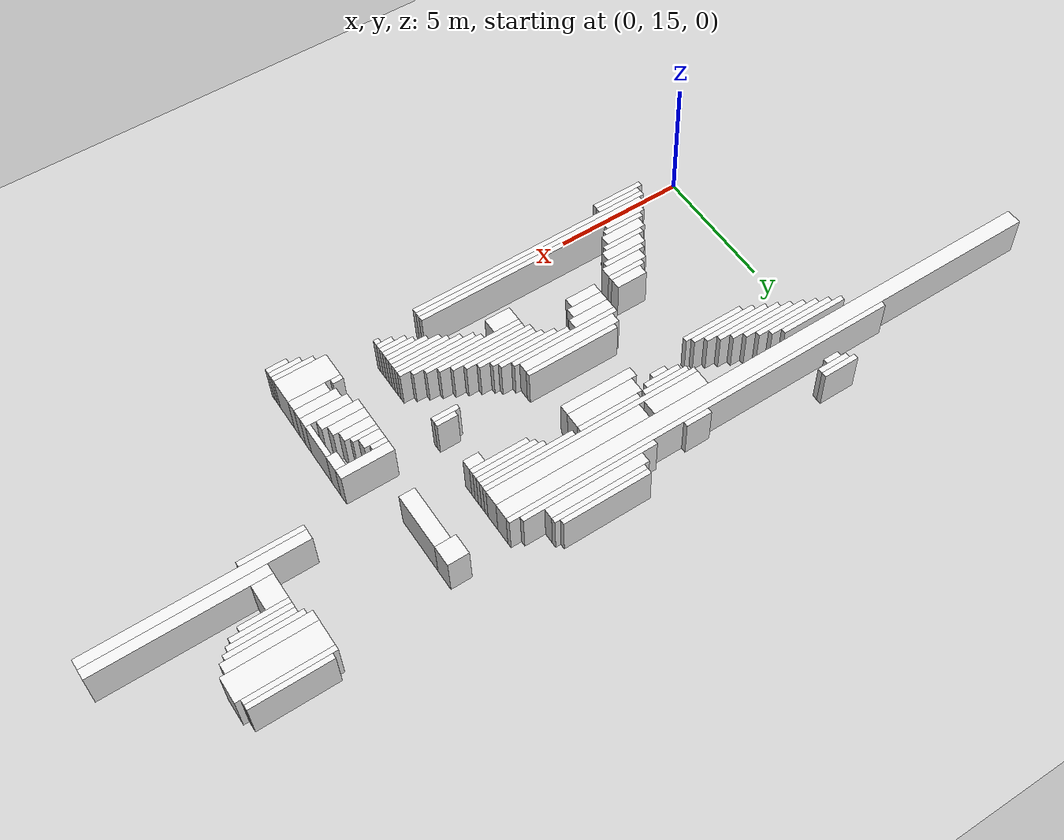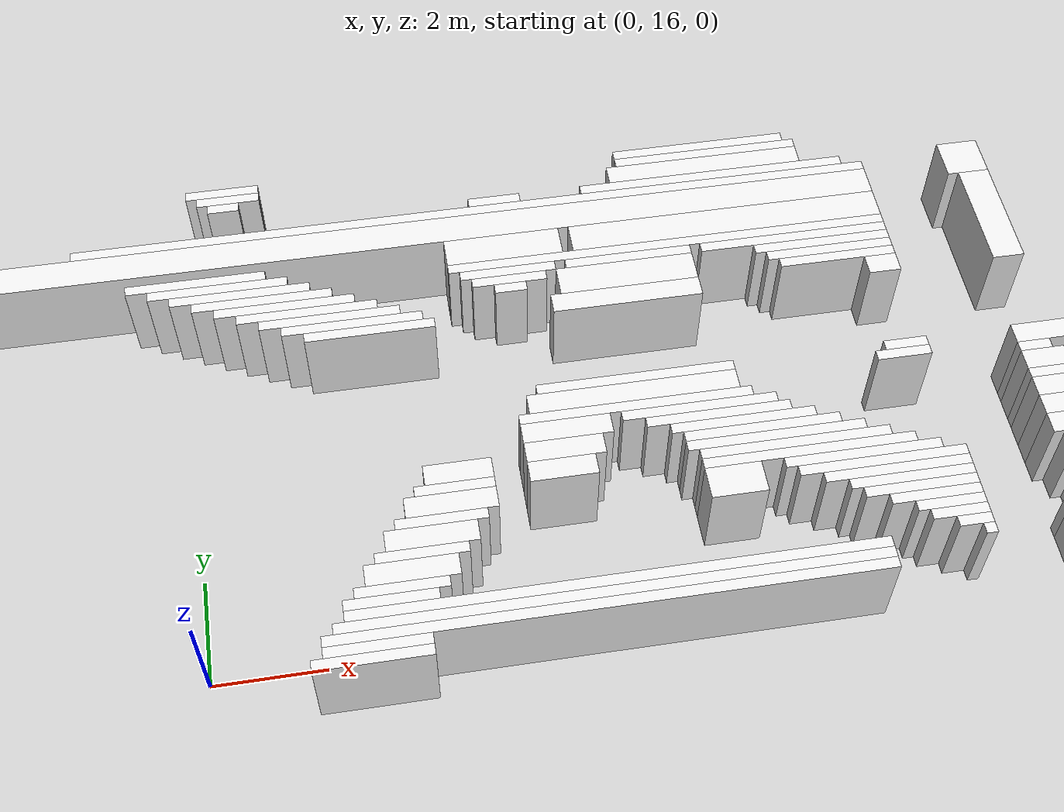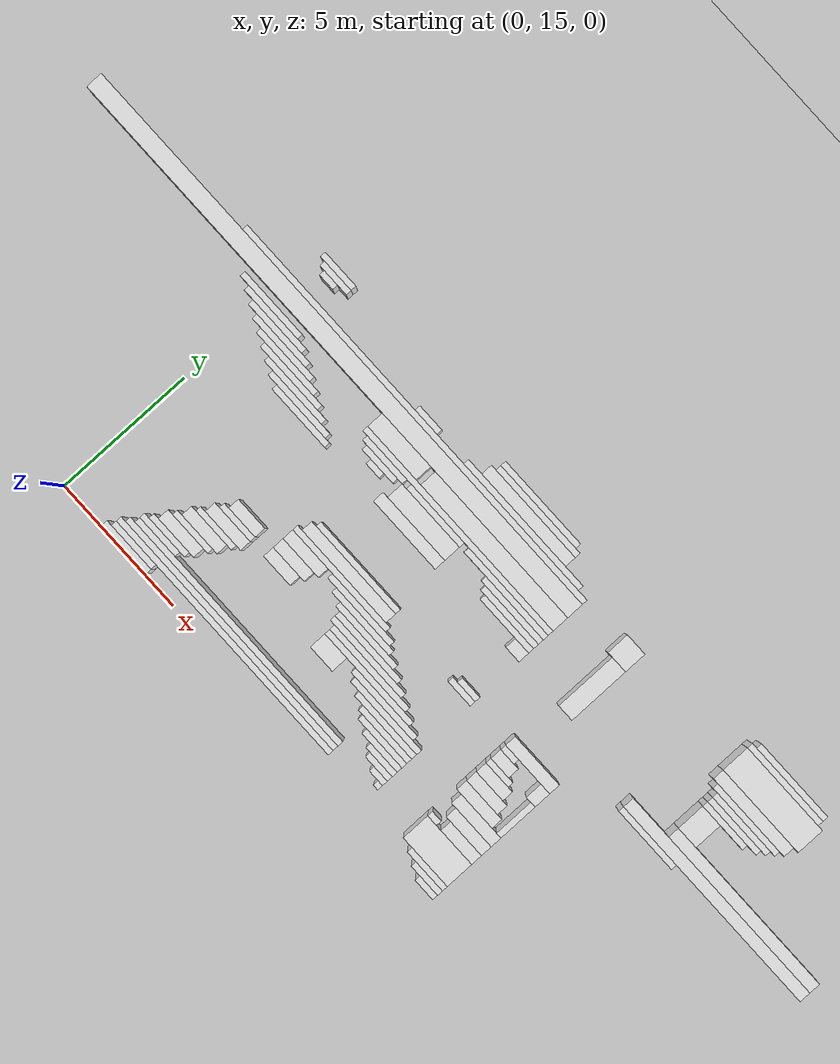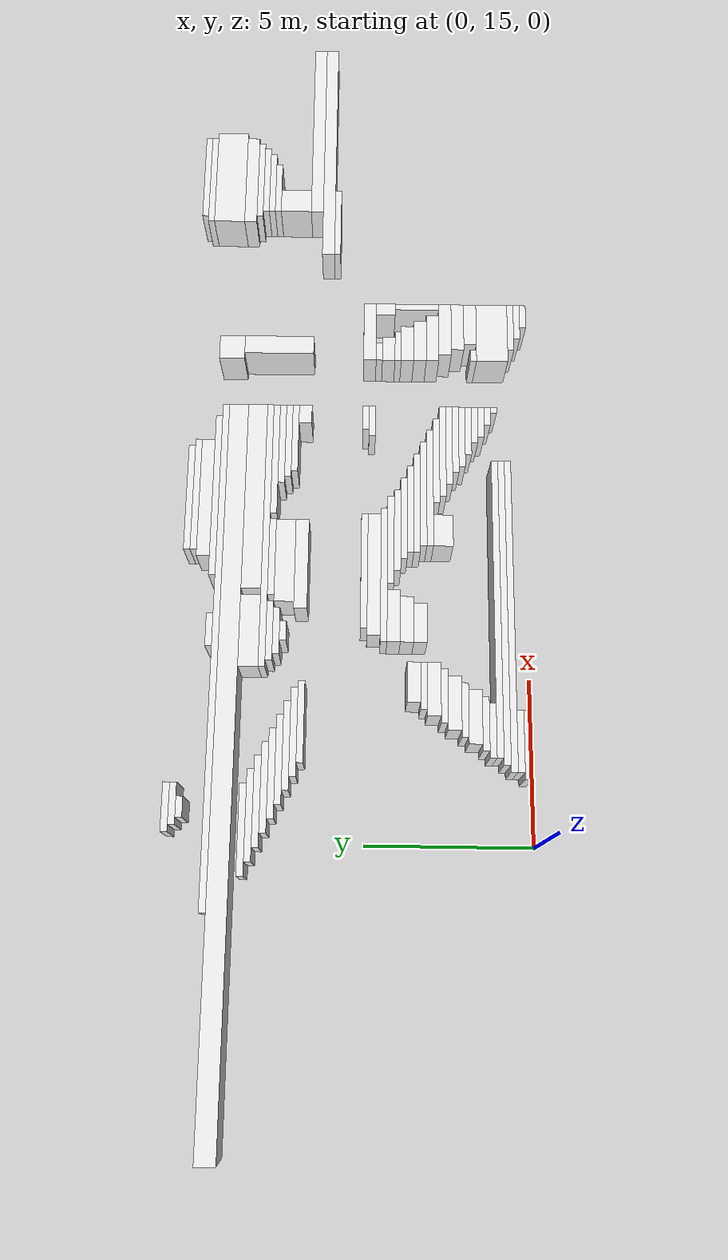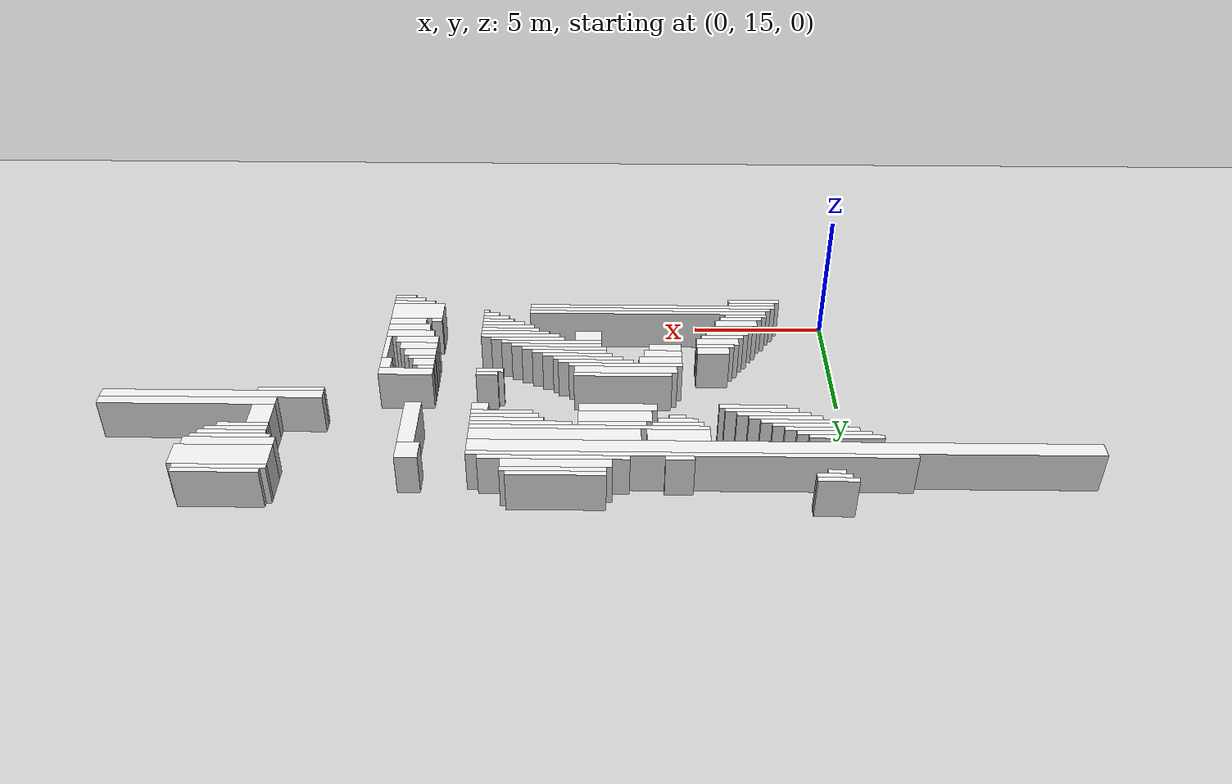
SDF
<sdf version="1.7">
 <world name="default">
  <model name="ground_plane">
   <static>1</static>
   <link name="link">
    <collision name="collision">
     <geometry><plane><normal>0 0 1</normal><size>120 120</size></plane></geometry>
    </collision>
    <visual name="visual">
     <geometry><plane><normal>0 0 1</normal><size>120 120</size></plane></geometry>
     <material>
      <script><uri>file://media/materials/scripts/gazebo.material</uri><name>Gazebo/Grey</name></script>
     </material>
    </visual>
   </link>
  </model>
  <model name="random_complex_01_model">
   <static>1</static>
   <link name="obs_806">
    <pose>0.9000 25.7000 0.8000 0 0 0</pose>
    <collision name="obs_806_col"><geometry><box><size>1.4000 0.2000 1.6000</size></box></geometry></collision>
    <visual name="obs_806_vis">
     <geometry><box><size>1.4000 0.2000 1.6000</size></box></geometry>
     <material>
      <script><uri>file://media/materials/scripts/gazebo.material</uri><name>Gazebo/White</name></script>
     </material>
    </visual>
   </link>
   <link name="obs_811">
    <pose>1.0000 25.5000 0.8000 0 0 0</pose>
    <collision name="obs_811_col"><geometry><box><size>1.2000 0.2000 1.6000</size></box></geometry></collision>
    <visual name="obs_811_vis">
     <geometry><box><size>1.2000 0.2000 1.6000</size></box></geometry>
     <material>
      <script><uri>file://media/materials/scripts/gazebo.material</uri><name>Gazebo/White</name></script>
     </material>
    </visual>
   </link>
   <link name="obs_812">
    <pose>10.3000 25.5000 0.8000 0 0 0</pose>
    <collision name="obs_812_col"><geometry><box><size>3.4000 0.2000 1.6000</size></box></geometry></collision>
    <visual name="obs_812_vis">
     <geometry><box><size>3.4000 0.2000 1.6000</size></box></geometry>
     <material>
      <script><uri>file://media/materials/scripts/gazebo.material</uri><name>Gazebo/White</name></script>
     </material>
    </visual>
   </link>
   <link name="obs_813">
    <pose>21.7000 25.5000 0.8000 0 0 0</pose>
    <collision name="obs_813_col"><geometry><box><size>3.0000 0.2000 1.6000</size></box></geometry></collision>
    <visual name="obs_813_vis">
     <geometry><box><size>3.0000 0.2000 1.6000</size></box></geometry>
     <material>
      <script><uri>file://media/materials/scripts/gazebo.material</uri><name>Gazebo/White</name></script>
     </material>
    </visual>
   </link>
   <link name="obs_816">
    <pose>0.9000 25.3000 0.8000 0 0 0</pose>
    <collision name="obs_816_col"><geometry><box><size>0.6000 0.2000 1.6000</size></box></geometry></collision>
    <visual name="obs_816_vis">
     <geometry><box><size>0.6000 0.2000 1.6000</size></box></geometry>
     <material>
      <script><uri>file://media/materials/scripts/gazebo.material</uri><name>Gazebo/White</name></script>
     </material>
    </visual>
   </link>
   <link name="obs_817">
    <pose>10.4000 25.3000 0.8000 0 0 0</pose>
    <collision name="obs_817_col"><geometry><box><size>3.6000 0.2000 1.6000</size></box></geometry></collision>
    <visual name="obs_817_vis">
     <geometry><box><size>3.6000 0.2000 1.6000</size></box></geometry>
     <material>
      <script><uri>file://media/materials/scripts/gazebo.material</uri><name>Gazebo/White</name></script>
     </material>
    </visual>
   </link>
   <link name="obs_818">
    <pose>21.6000 25.3000 0.8000 0 0 0</pose>
    <collision name="obs_818_col"><geometry><box><size>3.2000 0.2000 1.6000</size></box></geometry></collision>
    <visual name="obs_818_vis">
     <geometry><box><size>3.2000 0.2000 1.6000</size></box></geometry>
     <material>
      <script><uri>file://media/materials/scripts/gazebo.material</uri><name>Gazebo/White</name></script>
     </material>
    </visual>
   </link>
   <link name="obs_823">
    <pose>10.3000 25.0000 0.8000 0 0 0</pose>
    <collision name="obs_823_col"><geometry><box><size>3.8000 0.4000 1.6000</size></box></geometry></collision>
    <visual name="obs_823_vis">
     <geometry><box><size>3.8000 0.4000 1.6000</size></box></geometry>
     <material>
      <script><uri>file://media/materials/scripts/gazebo.material</uri><name>Gazebo/White</name></script>
     </material>
    </visual>
   </link>
   <link name="obs_832">
    <pose>6.1000 24.7000 0.8000 0 0 0</pose>
    <collision name="obs_832_col"><geometry><box><size>1.0000 0.2000 1.6000</size></box></geometry></collision>
    <visual name="obs_832_vis">
     <geometry><box><size>1.0000 0.2000 1.6000</size></box></geometry>
     <material>
      <script><uri>file://media/materials/scripts/gazebo.material</uri><name>Gazebo/White</name></script>
     </material>
    </visual>
   </link>
   <link name="obs_833">
    <pose>10.4000 24.7000 0.8000 0 0 0</pose>
    <collision name="obs_833_col"><geometry><box><size>5.2000 0.2000 1.6000</size></box></geometry></collision>
    <visual name="obs_833_vis">
     <geometry><box><size>5.2000 0.2000 1.6000</size></box></geometry>
     <material>
      <script><uri>file://media/materials/scripts/gazebo.material</uri><name>Gazebo/White</name></script>
     </material>
    </visual>
   </link>
   <link name="obs_839">
    <pose>5.7000 24.5000 0.8000 0 0 0</pose>
    <collision name="obs_839_col"><geometry><box><size>15.4000 0.2000 1.6000</size></box></geometry></collision>
    <visual name="obs_839_vis">
     <geometry><box><size>15.4000 0.2000 1.6000</size></box></geometry>
     <material>
      <script><uri>file://media/materials/scripts/gazebo.material</uri><name>Gazebo/White</name></script>
     </material>
    </visual>
   </link>
   <link name="obs_841">
    <pose>21.7000 24.7000 0.8000 0 0 0</pose>
    <collision name="obs_841_col"><geometry><box><size>3.4000 1.0000 1.6000</size></box></geometry></collision>
    <visual name="obs_841_vis">
     <geometry><box><size>3.4000 1.0000 1.6000</size></box></geometry>
     <material>
      <script><uri>file://media/materials/scripts/gazebo.material</uri><name>Gazebo/White</name></script>
     </material>
    </visual>
   </link>
   <link name="obs_849">
    <pose>15.4000 24.4000 0.8000 0 0 0</pose>
    <collision name="obs_849_col"><geometry><box><size>0.8000 0.8000 1.6000</size></box></geometry></collision>
    <visual name="obs_849_vis">
     <geometry><box><size>0.8000 0.8000 1.6000</size></box></geometry>
     <material>
      <script><uri>file://media/materials/scripts/gazebo.material</uri><name>Gazebo/White</name></script>
     </material>
    </visual>
   </link>
   <link name="obs_856">
    <pose>2.5000 24.1000 0.8000 0 0 0</pose>
    <collision name="obs_856_col"><geometry><box><size>21.8000 0.6000 1.6000</size></box></geometry></collision>
    <visual name="obs_856_vis">
     <geometry><box><size>21.8000 0.6000 1.6000</size></box></geometry>
     <material>
      <script><uri>file://media/materials/scripts/gazebo.material</uri><name>Gazebo/White</name></script>
     </material>
    </visual>
   </link>
   <link name="obs_857">
    <pose>21.6000 24.0000 0.8000 0 0 0</pose>
    <collision name="obs_857_col"><geometry><box><size>3.2000 0.4000 1.6000</size></box></geometry></collision>
    <visual name="obs_857_vis">
     <geometry><box><size>3.2000 0.4000 1.6000</size></box></geometry>
     <material>
      <script><uri>file://media/materials/scripts/gazebo.material</uri><name>Gazebo/White</name></script>
     </material>
    </visual>
   </link>
   <link name="obs_867">
    <pose>21.6000 23.7000 0.8000 0 0 0</pose>
    <collision name="obs_867_col"><geometry><box><size>2.8000 0.2000 1.6000</size></box></geometry></collision>
    <visual name="obs_867_vis">
     <geometry><box><size>2.8000 0.2000 1.6000</size></box></geometry>
     <material>
      <script><uri>file://media/materials/scripts/gazebo.material</uri><name>Gazebo/White</name></script>
     </material>
    </visual>
   </link>
   <link name="obs_873">
    <pose>0.3000 23.5000 0.8000 0 0 0</pose>
    <collision name="obs_873_col"><geometry><box><size>2.6000 0.2000 1.6000</size></box></geometry></collision>
    <visual name="obs_873_vis">
     <geometry><box><size>2.6000 0.2000 1.6000</size></box></geometry>
     <material>
      <script><uri>file://media/materials/scripts/gazebo.material</uri><name>Gazebo/White</name></script>
     </material>
    </visual>
   </link>
   <link name="obs_874">
    <pose>21.6000 23.5000 0.8000 0 0 0</pose>
    <collision name="obs_874_col"><geometry><box><size>2.4000 0.2000 1.6000</size></box></geometry></collision>
    <visual name="obs_874_vis">
     <geometry><box><size>2.4000 0.2000 1.6000</size></box></geometry>
     <material>
      <script><uri>file://media/materials/scripts/gazebo.material</uri><name>Gazebo/White</name></script>
     </material>
    </visual>
   </link>
   <link name="obs_875">
    <pose>6.1000 23.5000 0.8000 0 0 0</pose>
    <collision name="obs_875_col"><geometry><box><size>2.2000 0.6000 1.6000</size></box></geometry></collision>
    <visual name="obs_875_vis">
     <geometry><box><size>2.2000 0.6000 1.6000</size></box></geometry>
     <material>
      <script><uri>file://media/materials/scripts/gazebo.material</uri><name>Gazebo/White</name></script>
     </material>
    </visual>
   </link>
   <link name="obs_876">
    <pose>10.4000 23.5000 0.8000 0 0 0</pose>
    <collision name="obs_876_col"><geometry><box><size>6.0000 0.6000 1.6000</size></box></geometry></collision>
    <visual name="obs_876_vis">
     <geometry><box><size>6.0000 0.6000 1.6000</size></box></geometry>
     <material>
      <script><uri>file://media/materials/scripts/gazebo.material</uri><name>Gazebo/White</name></script>
     </material>
    </visual>
   </link>
   <link name="obs_883">
    <pose>0.7000 23.3000 0.8000 0 0 0</pose>
    <collision name="obs_883_col"><geometry><box><size>2.6000 0.2000 1.6000</size></box></geometry></collision>
    <visual name="obs_883_vis">
     <geometry><box><size>2.6000 0.2000 1.6000</size></box></geometry>
     <material>
      <script><uri>file://media/materials/scripts/gazebo.material</uri><name>Gazebo/White</name></script>
     </material>
    </visual>
   </link>
   <link name="obs_884">
    <pose>21.5000 23.3000 0.8000 0 0 0</pose>
    <collision name="obs_884_col"><geometry><box><size>2.2000 0.2000 1.6000</size></box></geometry></collision>
    <visual name="obs_884_vis">
     <geometry><box><size>2.2000 0.2000 1.6000</size></box></geometry>
     <material>
      <script><uri>file://media/materials/scripts/gazebo.material</uri><name>Gazebo/White</name></script>
     </material>
    </visual>
   </link>
   <link name="obs_893">
    <pose>1.1000 23.1000 0.8000 0 0 0</pose>
    <collision name="obs_893_col"><geometry><box><size>2.6000 0.2000 1.6000</size></box></geometry></collision>
    <visual name="obs_893_vis">
     <geometry><box><size>2.6000 0.2000 1.6000</size></box></geometry>
     <material>
      <script><uri>file://media/materials/scripts/gazebo.material</uri><name>Gazebo/White</name></script>
     </material>
    </visual>
   </link>
   <link name="obs_894">
    <pose>9.2000 23.1000 0.8000 0 0 0</pose>
    <collision name="obs_894_col"><geometry><box><size>8.4000 0.2000 1.6000</size></box></geometry></collision>
    <visual name="obs_894_vis">
     <geometry><box><size>8.4000 0.2000 1.6000</size></box></geometry>
     <material>
      <script><uri>file://media/materials/scripts/gazebo.material</uri><name>Gazebo/White</name></script>
     </material>
    </visual>
   </link>
   <link name="obs_895">
    <pose>21.3000 23.1000 0.8000 0 0 0</pose>
    <collision name="obs_895_col"><geometry><box><size>1.8000 0.2000 1.6000</size></box></geometry></collision>
    <visual name="obs_895_vis">
     <geometry><box><size>1.8000 0.2000 1.6000</size></box></geometry>
     <material>
      <script><uri>file://media/materials/scripts/gazebo.material</uri><name>Gazebo/White</name></script>
     </material>
    </visual>
   </link>
   <link name="obs_902">
    <pose>1.5000 22.9000 0.8000 0 0 0</pose>
    <collision name="obs_902_col"><geometry><box><size>2.6000 0.2000 1.6000</size></box></geometry></collision>
    <visual name="obs_902_vis">
     <geometry><box><size>2.6000 0.2000 1.6000</size></box></geometry>
     <material>
      <script><uri>file://media/materials/scripts/gazebo.material</uri><name>Gazebo/White</name></script>
     </material>
    </visual>
   </link>
   <link name="obs_903">
    <pose>6.1000 22.9000 0.8000 0 0 0</pose>
    <collision name="obs_903_col"><geometry><box><size>1.8000 0.2000 1.6000</size></box></geometry></collision>
    <visual name="obs_903_vis">
     <geometry><box><size>1.8000 0.2000 1.6000</size></box></geometry>
     <material>
      <script><uri>file://media/materials/scripts/gazebo.material</uri><name>Gazebo/White</name></script>
     </material>
    </visual>
   </link>
   <link name="obs_904">
    <pose>8.4000 22.9000 0.8000 0 0 0</pose>
    <collision name="obs_904_col"><geometry><box><size>2.4000 0.2000 1.6000</size></box></geometry></collision>
    <visual name="obs_904_vis">
     <geometry><box><size>2.4000 0.2000 1.6000</size></box></geometry>
     <material>
      <script><uri>file://media/materials/scripts/gazebo.material</uri><name>Gazebo/White</name></script>
     </material>
    </visual>
   </link>
   <link name="obs_905">
    <pose>11.6000 22.9000 0.8000 0 0 0</pose>
    <collision name="obs_905_col"><geometry><box><size>3.6000 0.2000 1.6000</size></box></geometry></collision>
    <visual name="obs_905_vis">
     <geometry><box><size>3.6000 0.2000 1.6000</size></box></geometry>
     <material>
      <script><uri>file://media/materials/scripts/gazebo.material</uri><name>Gazebo/White</name></script>
     </material>
    </visual>
   </link>
   <link name="obs_912">
    <pose>1.9000 22.7000 0.8000 0 0 0</pose>
    <collision name="obs_912_col"><geometry><box><size>2.6000 0.2000 1.6000</size></box></geometry></collision>
    <visual name="obs_912_vis">
     <geometry><box><size>2.6000 0.2000 1.6000</size></box></geometry>
     <material>
      <script><uri>file://media/materials/scripts/gazebo.material</uri><name>Gazebo/White</name></script>
     </material>
    </visual>
   </link>
   <link name="obs_913">
    <pose>6.1000 22.7000 0.8000 0 0 0</pose>
    <collision name="obs_913_col"><geometry><box><size>1.4000 0.2000 1.6000</size></box></geometry></collision>
    <visual name="obs_913_vis">
     <geometry><box><size>1.4000 0.2000 1.6000</size></box></geometry>
     <material>
      <script><uri>file://media/materials/scripts/gazebo.material</uri><name>Gazebo/White</name></script>
     </material>
    </visual>
   </link>
   <link name="obs_914">
    <pose>12.1000 22.7000 0.8000 0 0 0</pose>
    <collision name="obs_914_col"><geometry><box><size>2.6000 0.2000 1.6000</size></box></geometry></collision>
    <visual name="obs_914_vis">
     <geometry><box><size>2.6000 0.2000 1.6000</size></box></geometry>
     <material>
      <script><uri>file://media/materials/scripts/gazebo.material</uri><name>Gazebo/White</name></script>
     </material>
    </visual>
   </link>
   <link name="obs_922">
    <pose>2.3000 22.5000 0.8000 0 0 0</pose>
    <collision name="obs_922_col"><geometry><box><size>2.6000 0.2000 1.6000</size></box></geometry></collision>
    <visual name="obs_922_vis">
     <geometry><box><size>2.6000 0.2000 1.6000</size></box></geometry>
     <material>
      <script><uri>file://media/materials/scripts/gazebo.material</uri><name>Gazebo/White</name></script>
     </material>
    </visual>
   </link>
   <link name="obs_923">
    <pose>6.1000 22.5000 0.8000 0 0 0</pose>
    <collision name="obs_923_col"><geometry><box><size>0.6000 0.2000 1.6000</size></box></geometry></collision>
    <visual name="obs_923_vis">
     <geometry><box><size>0.6000 0.2000 1.6000</size></box></geometry>
     <material>
      <script><uri>file://media/materials/scripts/gazebo.material</uri><name>Gazebo/White</name></script>
     </material>
    </visual>
   </link>
   <link name="obs_924">
    <pose>12.2000 22.5000 0.8000 0 0 0</pose>
    <collision name="obs_924_col"><geometry><box><size>2.4000 0.2000 1.6000</size></box></geometry></collision>
    <visual name="obs_924_vis">
     <geometry><box><size>2.4000 0.2000 1.6000</size></box></geometry>
     <material>
      <script><uri>file://media/materials/scripts/gazebo.material</uri><name>Gazebo/White</name></script>
     </material>
    </visual>
   </link>
   <link name="obs_926">
    <pose>8.3000 22.5000 0.8000 0 0 0</pose>
    <collision name="obs_926_col"><geometry><box><size>2.6000 0.6000 1.6000</size></box></geometry></collision>
    <visual name="obs_926_vis">
     <geometry><box><size>2.6000 0.6000 1.6000</size></box></geometry>
     <material>
      <script><uri>file://media/materials/scripts/gazebo.material</uri><name>Gazebo/White</name></script>
     </material>
    </visual>
   </link>
   <link name="obs_929">
    <pose>2.7000 22.3000 0.8000 0 0 0</pose>
    <collision name="obs_929_col"><geometry><box><size>2.6000 0.2000 1.6000</size></box></geometry></collision>
    <visual name="obs_929_vis">
     <geometry><box><size>2.6000 0.2000 1.6000</size></box></geometry>
     <material>
      <script><uri>file://media/materials/scripts/gazebo.material</uri><name>Gazebo/White</name></script>
     </material>
    </visual>
   </link>
   <link name="obs_930">
    <pose>12.3000 22.3000 0.8000 0 0 0</pose>
    <collision name="obs_930_col"><geometry><box><size>2.2000 0.2000 1.6000</size></box></geometry></collision>
    <visual name="obs_930_vis">
     <geometry><box><size>2.2000 0.2000 1.6000</size></box></geometry>
     <material>
      <script><uri>file://media/materials/scripts/gazebo.material</uri><name>Gazebo/White</name></script>
     </material>
    </visual>
   </link>
   <link name="obs_932">
    <pose>20.8000 22.5000 0.8000 0 0 0</pose>
    <collision name="obs_932_col"><geometry><box><size>0.8000 1.0000 1.6000</size></box></geometry></collision>
    <visual name="obs_932_vis">
     <geometry><box><size>0.8000 1.0000 1.6000</size></box></geometry>
     <material>
      <script><uri>file://media/materials/scripts/gazebo.material</uri><name>Gazebo/White</name></script>
     </material>
    </visual>
   </link>
   <link name="obs_938">
    <pose>3.1000 22.1000 0.8000 0 0 0</pose>
    <collision name="obs_938_col"><geometry><box><size>2.6000 0.2000 1.6000</size></box></geometry></collision>
    <visual name="obs_938_vis">
     <geometry><box><size>2.6000 0.2000 1.6000</size></box></geometry>
     <material>
      <script><uri>file://media/materials/scripts/gazebo.material</uri><name>Gazebo/White</name></script>
     </material>
    </visual>
   </link>
   <link name="obs_940">
    <pose>15.5000 22.9000 0.8000 0 0 0</pose>
    <collision name="obs_940_col"><geometry><box><size>0.6000 2.2000 1.6000</size></box></geometry></collision>
    <visual name="obs_940_vis">
     <geometry><box><size>0.6000 2.2000 1.6000</size></box></geometry>
     <material>
      <script><uri>file://media/materials/scripts/gazebo.material</uri><name>Gazebo/White</name></script>
     </material>
    </visual>
   </link>
   <link name="obs_943">
    <pose>8.2000 22.0000 0.8000 0 0 0</pose>
    <collision name="obs_943_col"><geometry><box><size>2.8000 0.4000 1.6000</size></box></geometry></collision>
    <visual name="obs_943_vis">
     <geometry><box><size>2.8000 0.4000 1.6000</size></box></geometry>
     <material>
      <script><uri>file://media/materials/scripts/gazebo.material</uri><name>Gazebo/White</name></script>
     </material>
    </visual>
   </link>
   <link name="obs_944">
    <pose>13.1000 22.0000 0.8000 0 0 0</pose>
    <collision name="obs_944_col"><geometry><box><size>0.6000 0.4000 1.6000</size></box></geometry></collision>
    <visual name="obs_944_vis">
     <geometry><box><size>0.6000 0.4000 1.6000</size></box></geometry>
     <material>
      <script><uri>file://media/materials/scripts/gazebo.material</uri><name>Gazebo/White</name></script>
     </material>
    </visual>
   </link>
   <link name="obs_950">
    <pose>3.4000 21.9000 0.8000 0 0 0</pose>
    <collision name="obs_950_col"><geometry><box><size>2.4000 0.2000 1.6000</size></box></geometry></collision>
    <visual name="obs_950_vis">
     <geometry><box><size>2.4000 0.2000 1.6000</size></box></geometry>
     <material>
      <script><uri>file://media/materials/scripts/gazebo.material</uri><name>Gazebo/White</name></script>
     </material>
    </visual>
   </link>
   <link name="obs_951">
    <pose>23.6000 21.8000 0.8000 0 0 0</pose>
    <collision name="obs_951_col"><geometry><box><size>6.4000 0.4000 1.6000</size></box></geometry></collision>
    <visual name="obs_951_vis">
     <geometry><box><size>6.4000 0.4000 1.6000</size></box></geometry>
     <material>
      <script><uri>file://media/materials/scripts/gazebo.material</uri><name>Gazebo/White</name></script>
     </material>
    </visual>
   </link>
   <link name="obs_958">
    <pose>22.8000 21.4000 0.8000 0 0 0</pose>
    <collision name="obs_958_col"><geometry><box><size>8.0000 0.4000 1.6000</size></box></geometry></collision>
    <visual name="obs_958_vis">
     <geometry><box><size>8.0000 0.4000 1.6000</size></box></geometry>
     <material>
      <script><uri>file://media/materials/scripts/gazebo.material</uri><name>Gazebo/White</name></script>
     </material>
    </visual>
   </link>
   <link name="obs_960">
    <pose>20.0000 21.1000 0.8000 0 0 0</pose>
    <collision name="obs_960_col"><geometry><box><size>2.4000 0.2000 1.6000</size></box></geometry></collision>
    <visual name="obs_960_vis">
     <geometry><box><size>2.4000 0.2000 1.6000</size></box></geometry>
     <material>
      <script><uri>file://media/materials/scripts/gazebo.material</uri><name>Gazebo/White</name></script>
     </material>
    </visual>
   </link>
   <link name="obs_982">
    <pose>8.0000 20.1000 0.8000 0 0 0</pose>
    <collision name="obs_982_col"><geometry><box><size>3.6000 0.2000 1.6000</size></box></geometry></collision>
    <visual name="obs_982_vis">
     <geometry><box><size>3.6000 0.2000 1.6000</size></box></geometry>
     <material>
      <script><uri>file://media/materials/scripts/gazebo.material</uri><name>Gazebo/White</name></script>
     </material>
    </visual>
   </link>
   <link name="obs_983">
    <pose>13.0000 20.1000 0.8000 0 0 0</pose>
    <collision name="obs_983_col"><geometry><box><size>0.8000 0.2000 1.6000</size></box></geometry></collision>
    <visual name="obs_983_vis">
     <geometry><box><size>0.8000 0.2000 1.6000</size></box></geometry>
     <material>
      <script><uri>file://media/materials/scripts/gazebo.material</uri><name>Gazebo/White</name></script>
     </material>
    </visual>
   </link>
   <link name="obs_986">
    <pose>16.0000 20.0000 0.8000 0 0 0</pose>
    <collision name="obs_986_col"><geometry><box><size>2.0000 0.4000 1.6000</size></box></geometry></collision>
    <visual name="obs_986_vis">
     <geometry><box><size>2.0000 0.4000 1.6000</size></box></geometry>
     <material>
      <script><uri>file://media/materials/scripts/gazebo.material</uri><name>Gazebo/White</name></script>
     </material>
    </visual>
   </link>
   <link name="obs_990">
    <pose>12.9000 19.9000 0.8000 0 0 0</pose>
    <collision name="obs_990_col"><geometry><box><size>1.0000 0.2000 1.6000</size></box></geometry></collision>
    <visual name="obs_990_vis">
     <geometry><box><size>1.0000 0.2000 1.6000</size></box></geometry>
     <material>
      <script><uri>file://media/materials/scripts/gazebo.material</uri><name>Gazebo/White</name></script>
     </material>
    </visual>
   </link>
   <link name="obs_993">
    <pose>7.9000 19.8000 0.8000 0 0 0</pose>
    <collision name="obs_993_col"><geometry><box><size>3.8000 0.4000 1.6000</size></box></geometry></collision>
    <visual name="obs_993_vis">
     <geometry><box><size>3.8000 0.4000 1.6000</size></box></geometry>
     <material>
      <script><uri>file://media/materials/scripts/gazebo.material</uri><name>Gazebo/White</name></script>
     </material>
    </visual>
   </link>
   <link name="obs_995">
    <pose>15.3000 19.7000 0.8000 0 0 0</pose>
    <collision name="obs_995_col"><geometry><box><size>0.6000 0.2000 1.6000</size></box></geometry></collision>
    <visual name="obs_995_vis">
     <geometry><box><size>0.6000 0.2000 1.6000</size></box></geometry>
     <material>
      <script><uri>file://media/materials/scripts/gazebo.material</uri><name>Gazebo/White</name></script>
     </material>
    </visual>
   </link>
   <link name="obs_999">
    <pose>7.9000 19.5000 0.8000 0 0 0</pose>
    <collision name="obs_999_col"><geometry><box><size>4.2000 0.2000 1.6000</size></box></geometry></collision>
    <visual name="obs_999_vis">
     <geometry><box><size>4.2000 0.2000 1.6000</size></box></geometry>
     <material>
      <script><uri>file://media/materials/scripts/gazebo.material</uri><name>Gazebo/White</name></script>
     </material>
    </visual>
   </link>
   <link name="obs_1002">
    <pose>16.8000 19.5000 0.8000 0 0 0</pose>
    <collision name="obs_1002_col"><geometry><box><size>0.4000 0.6000 1.6000</size></box></geometry></collision>
    <visual name="obs_1002_vis">
     <geometry><box><size>0.4000 0.6000 1.6000</size></box></geometry>
     <material>
      <script><uri>file://media/materials/scripts/gazebo.material</uri><name>Gazebo/White</name></script>
     </material>
    </visual>
   </link>
   <link name="obs_1004">
    <pose>15.4000 19.4000 0.8000 0 0 0</pose>
    <collision name="obs_1004_col"><geometry><box><size>0.8000 0.4000 1.6000</size></box></geometry></collision>
    <visual name="obs_1004_vis">
     <geometry><box><size>0.8000 0.4000 1.6000</size></box></geometry>
     <material>
      <script><uri>file://media/materials/scripts/gazebo.material</uri><name>Gazebo/White</name></script>
     </material>
    </visual>
   </link>
   <link name="obs_1006">
    <pose>9.0000 19.3000 0.8000 0 0 0</pose>
    <collision name="obs_1006_col"><geometry><box><size>2.8000 0.2000 1.6000</size></box></geometry></collision>
    <visual name="obs_1006_vis">
     <geometry><box><size>2.8000 0.2000 1.6000</size></box></geometry>
     <material>
      <script><uri>file://media/materials/scripts/gazebo.material</uri><name>Gazebo/White</name></script>
     </material>
    </visual>
   </link>
   <link name="obs_1009">
    <pose>6.6000 19.2000 0.8000 0 0 0</pose>
    <collision name="obs_1009_col"><geometry><box><size>1.6000 0.4000 1.6000</size></box></geometry></collision>
    <visual name="obs_1009_vis">
     <geometry><box><size>1.6000 0.4000 1.6000</size></box></geometry>
     <material>
      <script><uri>file://media/materials/scripts/gazebo.material</uri><name>Gazebo/White</name></script>
     </material>
    </visual>
   </link>
   <link name="obs_1012">
    <pose>9.3000 19.1000 0.8000 0 0 0</pose>
    <collision name="obs_1012_col"><geometry><box><size>2.6000 0.2000 1.6000</size></box></geometry></collision>
    <visual name="obs_1012_vis">
     <geometry><box><size>2.6000 0.2000 1.6000</size></box></geometry>
     <material>
      <script><uri>file://media/materials/scripts/gazebo.material</uri><name>Gazebo/White</name></script>
     </material>
    </visual>
   </link>
   <link name="obs_1013">
    <pose>15.5000 19.1000 0.8000 0 0 0</pose>
    <collision name="obs_1013_col"><geometry><box><size>1.0000 0.2000 1.6000</size></box></geometry></collision>
    <visual name="obs_1013_vis">
     <geometry><box><size>1.0000 0.2000 1.6000</size></box></geometry>
     <material>
      <script><uri>file://media/materials/scripts/gazebo.material</uri><name>Gazebo/White</name></script>
     </material>
    </visual>
   </link>
   <link name="obs_1019">
    <pose>9.7000 18.9000 0.8000 0 0 0</pose>
    <collision name="obs_1019_col"><geometry><box><size>2.6000 0.2000 1.6000</size></box></geometry></collision>
    <visual name="obs_1019_vis">
     <geometry><box><size>2.6000 0.2000 1.6000</size></box></geometry>
     <material>
      <script><uri>file://media/materials/scripts/gazebo.material</uri><name>Gazebo/White</name></script>
     </material>
    </visual>
   </link>
   <link name="obs_1022">
    <pose>6.5000 18.8000 0.8000 0 0 0</pose>
    <collision name="obs_1022_col"><geometry><box><size>1.4000 0.4000 1.6000</size></box></geometry></collision>
    <visual name="obs_1022_vis">
     <geometry><box><size>1.4000 0.4000 1.6000</size></box></geometry>
     <material>
      <script><uri>file://media/materials/scripts/gazebo.material</uri><name>Gazebo/White</name></script>
     </material>
    </visual>
   </link>
   <link name="obs_1023">
    <pose>15.6000 18.8000 0.8000 0 0 0</pose>
    <collision name="obs_1023_col"><geometry><box><size>1.2000 0.4000 1.6000</size></box></geometry></collision>
    <visual name="obs_1023_vis">
     <geometry><box><size>1.2000 0.4000 1.6000</size></box></geometry>
     <material>
      <script><uri>file://media/materials/scripts/gazebo.material</uri><name>Gazebo/White</name></script>
     </material>
    </visual>
   </link>
   <link name="obs_1025">
    <pose>10.0000 18.7000 0.8000 0 0 0</pose>
    <collision name="obs_1025_col"><geometry><box><size>2.8000 0.2000 1.6000</size></box></geometry></collision>
    <visual name="obs_1025_vis">
     <geometry><box><size>2.8000 0.2000 1.6000</size></box></geometry>
     <material>
      <script><uri>file://media/materials/scripts/gazebo.material</uri><name>Gazebo/White</name></script>
     </material>
    </visual>
   </link>
   <link name="obs_1028">
    <pose>4.6000 18.6000 0.8000 0 0 0</pose>
    <collision name="obs_1028_col"><geometry><box><size>1.2000 0.4000 1.6000</size></box></geometry></collision>
    <visual name="obs_1028_vis">
     <geometry><box><size>1.2000 0.4000 1.6000</size></box></geometry>
     <material>
      <script><uri>file://media/materials/scripts/gazebo.material</uri><name>Gazebo/White</name></script>
     </material>
    </visual>
   </link>
   <link name="obs_1031">
    <pose>10.2000 18.5000 0.8000 0 0 0</pose>
    <collision name="obs_1031_col"><geometry><box><size>3.2000 0.2000 1.6000</size></box></geometry></collision>
    <visual name="obs_1031_vis">
     <geometry><box><size>3.2000 0.2000 1.6000</size></box></geometry>
     <material>
      <script><uri>file://media/materials/scripts/gazebo.material</uri><name>Gazebo/White</name></script>
     </material>
    </visual>
   </link>
   <link name="obs_1035">
    <pose>6.4000 18.4000 0.8000 0 0 0</pose>
    <collision name="obs_1035_col"><geometry><box><size>1.2000 0.4000 1.6000</size></box></geometry></collision>
    <visual name="obs_1035_vis">
     <geometry><box><size>1.2000 0.4000 1.6000</size></box></geometry>
     <material>
      <script><uri>file://media/materials/scripts/gazebo.material</uri><name>Gazebo/White</name></script>
     </material>
    </visual>
   </link>
   <link name="obs_1036">
    <pose>15.7000 18.4000 0.8000 0 0 0</pose>
    <collision name="obs_1036_col"><geometry><box><size>1.4000 0.4000 1.6000</size></box></geometry></collision>
    <visual name="obs_1036_vis">
     <geometry><box><size>1.4000 0.4000 1.6000</size></box></geometry>
     <material>
      <script><uri>file://media/materials/scripts/gazebo.material</uri><name>Gazebo/White</name></script>
     </material>
    </visual>
   </link>
   <link name="obs_1042">
    <pose>4.5000 18.3000 0.8000 0 0 0</pose>
    <collision name="obs_1042_col"><geometry><box><size>1.4000 0.2000 1.6000</size></box></geometry></collision>
    <visual name="obs_1042_vis">
     <geometry><box><size>1.4000 0.2000 1.6000</size></box></geometry>
     <material>
      <script><uri>file://media/materials/scripts/gazebo.material</uri><name>Gazebo/White</name></script>
     </material>
    </visual>
   </link>
   <link name="obs_1043">
    <pose>10.5000 18.3000 0.8000 0 0 0</pose>
    <collision name="obs_1043_col"><geometry><box><size>3.4000 0.2000 1.6000</size></box></geometry></collision>
    <visual name="obs_1043_vis">
     <geometry><box><size>3.4000 0.2000 1.6000</size></box></geometry>
     <material>
      <script><uri>file://media/materials/scripts/gazebo.material</uri><name>Gazebo/White</name></script>
     </material>
    </visual>
   </link>
   <link name="obs_1051">
    <pose>10.7000 18.1000 0.8000 0 0 0</pose>
    <collision name="obs_1051_col"><geometry><box><size>3.8000 0.2000 1.6000</size></box></geometry></collision>
    <visual name="obs_1051_vis">
     <geometry><box><size>3.8000 0.2000 1.6000</size></box></geometry>
     <material>
      <script><uri>file://media/materials/scripts/gazebo.material</uri><name>Gazebo/White</name></script>
     </material>
    </visual>
   </link>
   <link name="obs_1054">
    <pose>16.9000 18.5000 0.8000 0 0 0</pose>
    <collision name="obs_1054_col"><geometry><box><size>0.2000 1.4000 1.6000</size></box></geometry></collision>
    <visual name="obs_1054_vis">
     <geometry><box><size>0.2000 1.4000 1.6000</size></box></geometry>
     <material>
      <script><uri>file://media/materials/scripts/gazebo.material</uri><name>Gazebo/White</name></script>
     </material>
    </visual>
   </link>
   <link name="obs_1057">
    <pose>4.4000 18.0000 0.8000 0 0 0</pose>
    <collision name="obs_1057_col"><geometry><box><size>1.6000 0.4000 1.6000</size></box></geometry></collision>
    <visual name="obs_1057_vis">
     <geometry><box><size>1.6000 0.4000 1.6000</size></box></geometry>
     <material>
      <script><uri>file://media/materials/scripts/gazebo.material</uri><name>Gazebo/White</name></script>
     </material>
    </visual>
   </link>
   <link name="obs_1058">
    <pose>15.8000 18.0000 0.8000 0 0 0</pose>
    <collision name="obs_1058_col"><geometry><box><size>1.6000 0.4000 1.6000</size></box></geometry></collision>
    <visual name="obs_1058_vis">
     <geometry><box><size>1.6000 0.4000 1.6000</size></box></geometry>
     <material>
      <script><uri>file://media/materials/scripts/gazebo.material</uri><name>Gazebo/White</name></script>
     </material>
    </visual>
   </link>
   <link name="obs_1064">
    <pose>11.6000 17.9000 0.8000 0 0 0</pose>
    <collision name="obs_1064_col"><geometry><box><size>2.8000 0.2000 1.6000</size></box></geometry></collision>
    <visual name="obs_1064_vis">
     <geometry><box><size>2.8000 0.2000 1.6000</size></box></geometry>
     <material>
      <script><uri>file://media/materials/scripts/gazebo.material</uri><name>Gazebo/White</name></script>
     </material>
    </visual>
   </link>
   <link name="obs_1070">
    <pose>4.2000 17.7000 0.8000 0 0 0</pose>
    <collision name="obs_1070_col"><geometry><box><size>1.6000 0.2000 1.6000</size></box></geometry></collision>
    <visual name="obs_1070_vis">
     <geometry><box><size>1.6000 0.2000 1.6000</size></box></geometry>
     <material>
      <script><uri>file://media/materials/scripts/gazebo.material</uri><name>Gazebo/White</name></script>
     </material>
    </visual>
   </link>
   <link name="obs_1071">
    <pose>11.9000 17.7000 0.8000 0 0 0</pose>
    <collision name="obs_1071_col"><geometry><box><size>3.0000 0.2000 1.6000</size></box></geometry></collision>
    <visual name="obs_1071_vis">
     <geometry><box><size>3.0000 0.2000 1.6000</size></box></geometry>
     <material>
      <script><uri>file://media/materials/scripts/gazebo.material</uri><name>Gazebo/White</name></script>
     </material>
    </visual>
   </link>
   <link name="obs_1073">
    <pose>9.3000 17.7000 0.8000 0 0 0</pose>
    <collision name="obs_1073_col"><geometry><box><size>1.0000 0.6000 1.6000</size></box></geometry></collision>
    <visual name="obs_1073_vis">
     <geometry><box><size>1.0000 0.6000 1.6000</size></box></geometry>
     <material>
      <script><uri>file://media/materials/scripts/gazebo.material</uri><name>Gazebo/White</name></script>
     </material>
    </visual>
   </link>
   <link name="obs_1074">
    <pose>16.1000 17.6000 0.8000 0 0 0</pose>
    <collision name="obs_1074_col"><geometry><box><size>1.8000 0.4000 1.6000</size></box></geometry></collision>
    <visual name="obs_1074_vis">
     <geometry><box><size>1.8000 0.4000 1.6000</size></box></geometry>
     <material>
      <script><uri>file://media/materials/scripts/gazebo.material</uri><name>Gazebo/White</name></script>
     </material>
    </visual>
   </link>
   <link name="obs_1078">
    <pose>12.1000 17.5000 0.8000 0 0 0</pose>
    <collision name="obs_1078_col"><geometry><box><size>2.6000 0.2000 1.6000</size></box></geometry></collision>
    <visual name="obs_1078_vis">
     <geometry><box><size>2.6000 0.2000 1.6000</size></box></geometry>
     <material>
      <script><uri>file://media/materials/scripts/gazebo.material</uri><name>Gazebo/White</name></script>
     </material>
    </visual>
   </link>
   <link name="obs_1082">
    <pose>4.0000 17.4000 0.8000 0 0 0</pose>
    <collision name="obs_1082_col"><geometry><box><size>1.6000 0.4000 1.6000</size></box></geometry></collision>
    <visual name="obs_1082_vis">
     <geometry><box><size>1.6000 0.4000 1.6000</size></box></geometry>
     <material>
      <script><uri>file://media/materials/scripts/gazebo.material</uri><name>Gazebo/White</name></script>
     </material>
    </visual>
   </link>
   <link name="obs_1085">
    <pose>12.3000 17.3000 0.8000 0 0 0</pose>
    <collision name="obs_1085_col"><geometry><box><size>2.2000 0.2000 1.6000</size></box></geometry></collision>
    <visual name="obs_1085_vis">
     <geometry><box><size>2.2000 0.2000 1.6000</size></box></geometry>
     <material>
      <script><uri>file://media/materials/scripts/gazebo.material</uri><name>Gazebo/White</name></script>
     </material>
    </visual>
   </link>
   <link name="obs_1088">
    <pose>16.2000 17.2000 0.8000 0 0 0</pose>
    <collision name="obs_1088_col"><geometry><box><size>1.6000 0.4000 1.6000</size></box></geometry></collision>
    <visual name="obs_1088_vis">
     <geometry><box><size>1.6000 0.4000 1.6000</size></box></geometry>
     <material>
      <script><uri>file://media/materials/scripts/gazebo.material</uri><name>Gazebo/White</name></script>
     </material>
    </visual>
   </link>
   <link name="obs_1092">
    <pose>3.8000 17.1000 0.8000 0 0 0</pose>
    <collision name="obs_1092_col"><geometry><box><size>1.6000 0.2000 1.6000</size></box></geometry></collision>
    <visual name="obs_1092_vis">
     <geometry><box><size>1.6000 0.2000 1.6000</size></box></geometry>
     <material>
      <script><uri>file://media/materials/scripts/gazebo.material</uri><name>Gazebo/White</name></script>
     </material>
    </visual>
   </link>
   <link name="obs_1093">
    <pose>12.4000 17.1000 0.8000 0 0 0</pose>
    <collision name="obs_1093_col"><geometry><box><size>2.0000 0.2000 1.6000</size></box></geometry></collision>
    <visual name="obs_1093_vis">
     <geometry><box><size>2.0000 0.2000 1.6000</size></box></geometry>
     <material>
      <script><uri>file://media/materials/scripts/gazebo.material</uri><name>Gazebo/White</name></script>
     </material>
    </visual>
   </link>
   <link name="obs_1100">
    <pose>12.6000 16.9000 0.8000 0 0 0</pose>
    <collision name="obs_1100_col"><geometry><box><size>1.6000 0.2000 1.6000</size></box></geometry></collision>
    <visual name="obs_1100_vis">
     <geometry><box><size>1.6000 0.2000 1.6000</size></box></geometry>
     <material>
      <script><uri>file://media/materials/scripts/gazebo.material</uri><name>Gazebo/White</name></script>
     </material>
    </visual>
   </link>
   <link name="obs_1105">
    <pose>3.6000 16.8000 0.8000 0 0 0</pose>
    <collision name="obs_1105_col"><geometry><box><size>1.6000 0.4000 1.6000</size></box></geometry></collision>
    <visual name="obs_1105_vis">
     <geometry><box><size>1.6000 0.4000 1.6000</size></box></geometry>
     <material>
      <script><uri>file://media/materials/scripts/gazebo.material</uri><name>Gazebo/White</name></script>
     </material>
    </visual>
   </link>
   <link name="obs_1106">
    <pose>16.3000 16.8000 0.8000 0 0 0</pose>
    <collision name="obs_1106_col"><geometry><box><size>1.4000 0.4000 1.6000</size></box></geometry></collision>
    <visual name="obs_1106_vis">
     <geometry><box><size>1.4000 0.4000 1.6000</size></box></geometry>
     <material>
      <script><uri>file://media/materials/scripts/gazebo.material</uri><name>Gazebo/White</name></script>
     </material>
    </visual>
   </link>
   <link name="obs_1110">
    <pose>12.8000 16.7000 0.8000 0 0 0</pose>
    <collision name="obs_1110_col"><geometry><box><size>1.2000 0.2000 1.6000</size></box></geometry></collision>
    <visual name="obs_1110_vis">
     <geometry><box><size>1.2000 0.2000 1.6000</size></box></geometry>
     <material>
      <script><uri>file://media/materials/scripts/gazebo.material</uri><name>Gazebo/White</name></script>
     </material>
    </visual>
   </link>
   <link name="obs_1111">
    <pose>15.2000 16.7000 0.8000 0 0 0</pose>
    <collision name="obs_1111_col"><geometry><box><size>0.4000 0.2000 1.6000</size></box></geometry></collision>
    <visual name="obs_1111_vis">
     <geometry><box><size>0.4000 0.2000 1.6000</size></box></geometry>
     <material>
      <script><uri>file://media/materials/scripts/gazebo.material</uri><name>Gazebo/White</name></script>
     </material>
    </visual>
   </link>
   <link name="obs_1117">
    <pose>3.4000 16.5000 0.8000 0 0 0</pose>
    <collision name="obs_1117_col"><geometry><box><size>1.6000 0.2000 1.6000</size></box></geometry></collision>
    <visual name="obs_1117_vis">
     <geometry><box><size>1.6000 0.2000 1.6000</size></box></geometry>
     <material>
      <script><uri>file://media/materials/scripts/gazebo.material</uri><name>Gazebo/White</name></script>
     </material>
    </visual>
   </link>
   <link name="obs_1118">
    <pose>12.9000 16.5000 0.8000 0 0 0</pose>
    <collision name="obs_1118_col"><geometry><box><size>1.0000 0.2000 1.6000</size></box></geometry></collision>
    <visual name="obs_1118_vis">
     <geometry><box><size>1.0000 0.2000 1.6000</size></box></geometry>
     <material>
      <script><uri>file://media/materials/scripts/gazebo.material</uri><name>Gazebo/White</name></script>
     </material>
    </visual>
   </link>
   <link name="obs_1125">
    <pose>3.2000 16.3000 0.8000 0 0 0</pose>
    <collision name="obs_1125_col"><geometry><box><size>1.6000 0.2000 1.6000</size></box></geometry></collision>
    <visual name="obs_1125_vis">
     <geometry><box><size>1.6000 0.2000 1.6000</size></box></geometry>
     <material>
      <script><uri>file://media/materials/scripts/gazebo.material</uri><name>Gazebo/White</name></script>
     </material>
    </visual>
   </link>
   <link name="obs_1126">
    <pose>13.1000 16.3000 0.8000 0 0 0</pose>
    <collision name="obs_1126_col"><geometry><box><size>0.6000 0.2000 1.6000</size></box></geometry></collision>
    <visual name="obs_1126_vis">
     <geometry><box><size>0.6000 0.2000 1.6000</size></box></geometry>
     <material>
      <script><uri>file://media/materials/scripts/gazebo.material</uri><name>Gazebo/White</name></script>
     </material>
    </visual>
   </link>
   <link name="obs_1135">
    <pose>7.0000 16.1000 0.8000 0 0 0</pose>
    <collision name="obs_1135_col"><geometry><box><size>9.2000 0.2000 1.6000</size></box></geometry></collision>
    <visual name="obs_1135_vis">
     <geometry><box><size>9.2000 0.2000 1.6000</size></box></geometry>
     <material>
      <script><uri>file://media/materials/scripts/gazebo.material</uri><name>Gazebo/White</name></script>
     </material>
    </visual>
   </link>
   <link name="obs_1136">
    <pose>13.3000 16.1000 0.8000 0 0 0</pose>
    <collision name="obs_1136_col"><geometry><box><size>0.2000 0.2000 1.6000</size></box></geometry></collision>
    <visual name="obs_1136_vis">
     <geometry><box><size>0.2000 0.2000 1.6000</size></box></geometry>
     <material>
      <script><uri>file://media/materials/scripts/gazebo.material</uri><name>Gazebo/White</name></script>
     </material>
    </visual>
   </link>
   <link name="obs_1145">
    <pose>6.9000 15.9000 0.8000 0 0 0</pose>
    <collision name="obs_1145_col"><geometry><box><size>9.4000 0.2000 1.6000</size></box></geometry></collision>
    <visual name="obs_1145_vis">
     <geometry><box><size>9.4000 0.2000 1.6000</size></box></geometry>
     <material>
      <script><uri>file://media/materials/scripts/gazebo.material</uri><name>Gazebo/White</name></script>
     </material>
    </visual>
   </link>
   <link name="obs_1150">
    <pose>16.0000 16.1000 0.8000 0 0 0</pose>
    <collision name="obs_1150_col"><geometry><box><size>2.0000 1.0000 1.6000</size></box></geometry></collision>
    <visual name="obs_1150_vis">
     <geometry><box><size>2.0000 1.0000 1.6000</size></box></geometry>
     <material>
      <script><uri>file://media/materials/scripts/gazebo.material</uri><name>Gazebo/White</name></script>
     </material>
    </visual>
   </link>
   <link name="obs_1155">
    <pose>6.8000 15.7000 0.8000 0 0 0</pose>
    <collision name="obs_1155_col"><geometry><box><size>9.6000 0.2000 1.6000</size></box></geometry></collision>
    <visual name="obs_1155_vis">
     <geometry><box><size>9.6000 0.2000 1.6000</size></box></geometry>
     <material>
      <script><uri>file://media/materials/scripts/gazebo.material</uri><name>Gazebo/White</name></script>
     </material>
    </visual>
   </link>
   <link name="obs_1162">
    <pose>2.9000 15.5000 0.8000 0 0 0</pose>
    <collision name="obs_1162_col"><geometry><box><size>1.8000 0.2000 1.6000</size></box></geometry></collision>
    <visual name="obs_1162_vis">
     <geometry><box><size>1.8000 0.2000 1.6000</size></box></geometry>
     <material>
      <script><uri>file://media/materials/scripts/gazebo.material</uri><name>Gazebo/White</name></script>
     </material>
    </visual>
   </link>
   <link name="obs_1163">
    <pose>16.2000 15.5000 0.8000 0 0 0</pose>
    <collision name="obs_1163_col"><geometry><box><size>1.6000 0.2000 1.6000</size></box></geometry></collision>
    <visual name="obs_1163_vis">
     <geometry><box><size>1.6000 0.2000 1.6000</size></box></geometry>
     <material>
      <script><uri>file://media/materials/scripts/gazebo.material</uri><name>Gazebo/White</name></script>
     </material>
    </visual>
   </link>
   <link name="obs_1173">
    <pose>2.8000 15.3000 0.8000 0 0 0</pose>
    <collision name="obs_1173_col"><geometry><box><size>2.0000 0.2000 1.6000</size></box></geometry></collision>
    <visual name="obs_1173_vis">
     <geometry><box><size>2.0000 0.2000 1.6000</size></box></geometry>
     <material>
      <script><uri>file://media/materials/scripts/gazebo.material</uri><name>Gazebo/White</name></script>
     </material>
    </visual>
   </link>
   <link name="obs_1174">
    <pose>16.4000 15.3000 0.8000 0 0 0</pose>
    <collision name="obs_1174_col"><geometry><box><size>1.2000 0.2000 1.6000</size></box></geometry></collision>
    <visual name="obs_1174_vis">
     <geometry><box><size>1.2000 0.2000 1.6000</size></box></geometry>
     <material>
      <script><uri>file://media/materials/scripts/gazebo.material</uri><name>Gazebo/White</name></script>
     </material>
    </visual>
   </link>
   <link name="obs_1180">
    <pose>16.6000 15.1000 0.8000 0 0 0</pose>
    <collision name="obs_1180_col"><geometry><box><size>0.8000 0.2000 1.6000</size></box></geometry></collision>
    <visual name="obs_1180_vis">
     <geometry><box><size>0.8000 0.2000 1.6000</size></box></geometry>
     <material>
      <script><uri>file://media/materials/scripts/gazebo.material</uri><name>Gazebo/White</name></script>
     </material>
    </visual>
   </link>
  </model>
 </world>
</sdf>
